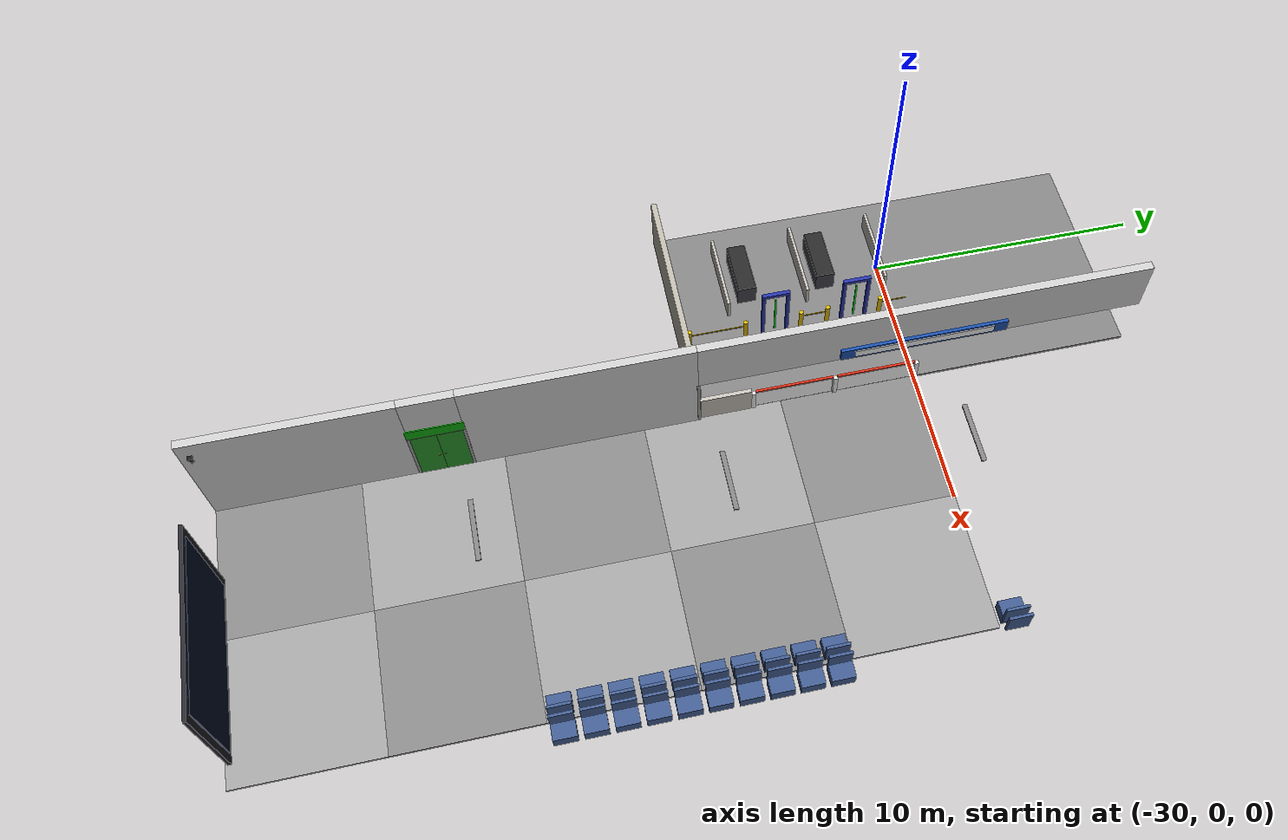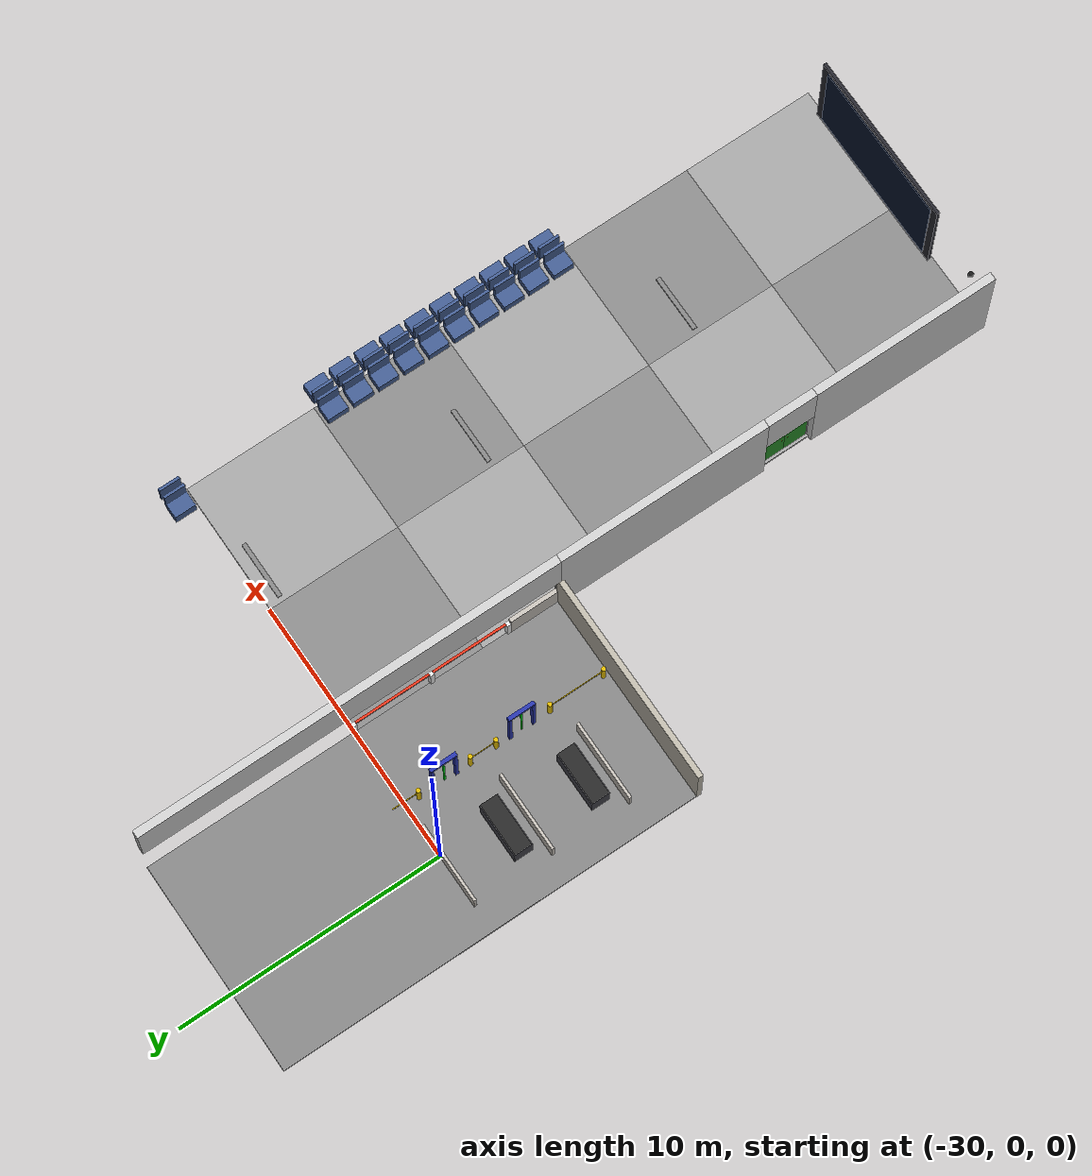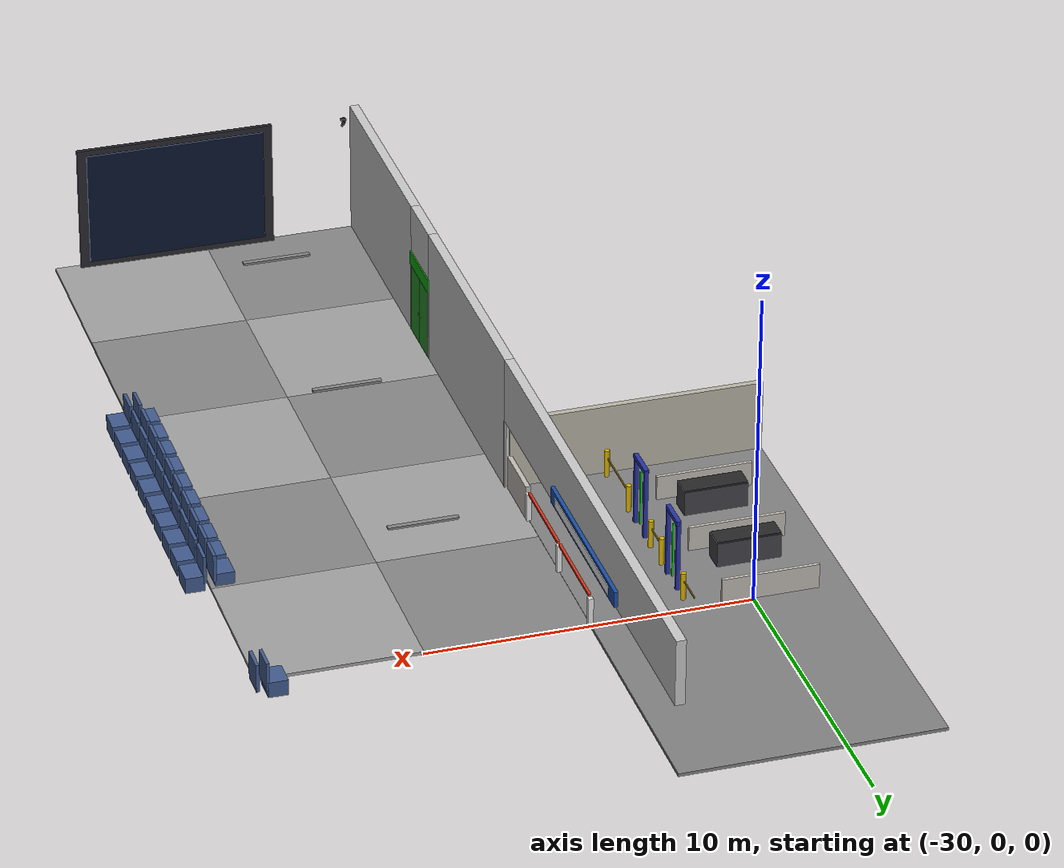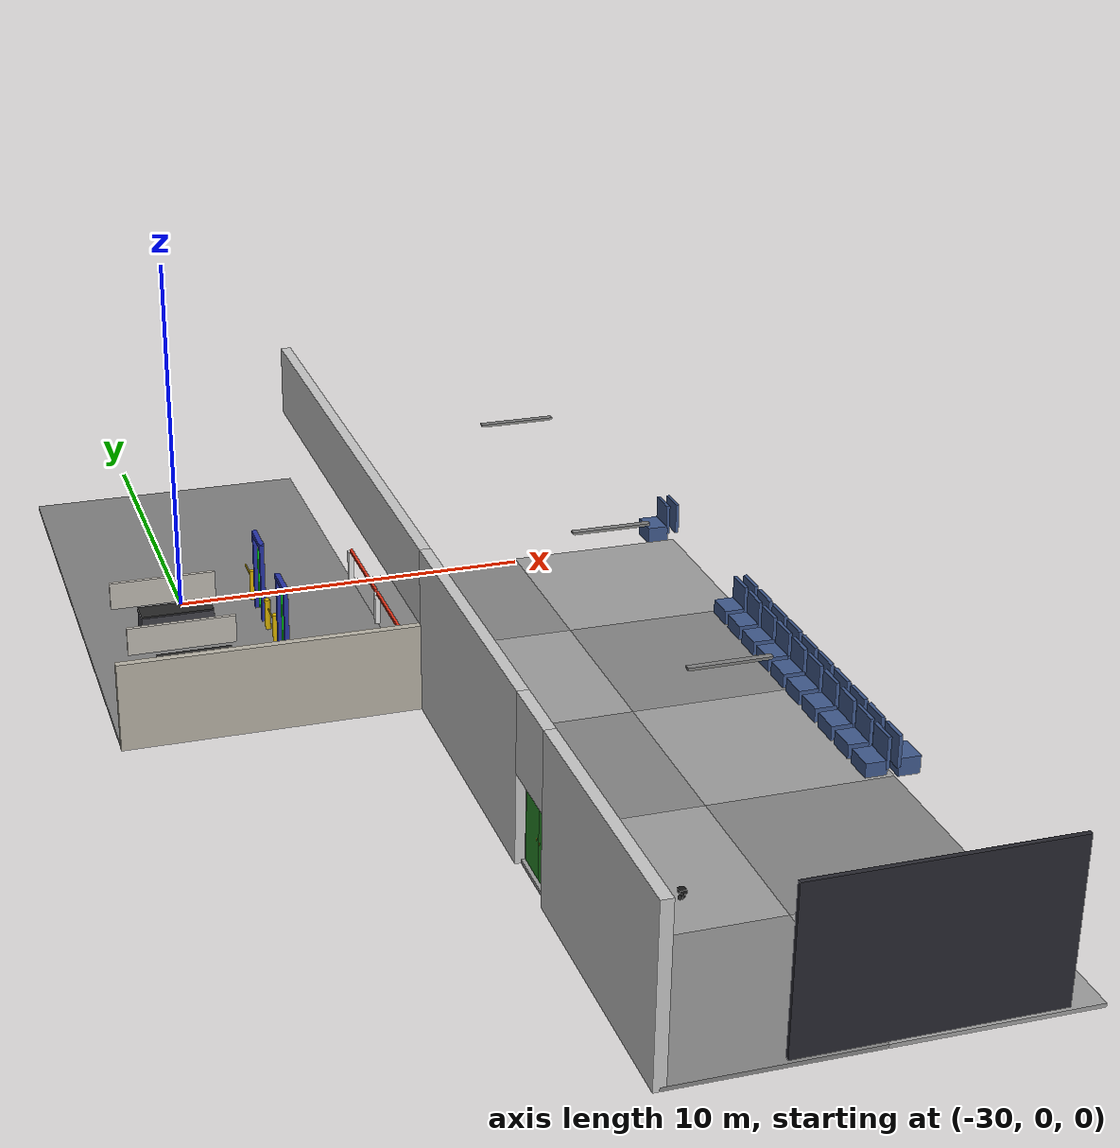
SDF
<sdf version="1.10">
 <world name="my_world">
  <model name="vtile_0_0">
   <static>true</static>
   <pose>-22.5 -22.5 0.05 0 0 0</pose>
   <link name="link">
    <visual name="vis">
     <geometry><box><size>5 5 0.1</size></box></geometry>
     <material><ambient>0.52 0.52 0.52 1</ambient><diffuse>0.52 0.52 0.52 1</diffuse></material>
    </visual>
   </link>
  </model>
  <model name="vtile_0_1">
   <static>true</static>
   <pose>-22.5 -17.5 0.05 0 0 0</pose>
   <link name="link">
    <visual name="vis">
     <geometry><box><size>5 5 0.1</size></box></geometry>
     <material><ambient>0.62 0.62 0.62 1</ambient><diffuse>0.62 0.62 0.62 1</diffuse></material>
    </visual>
   </link>
  </model>
  <model name="vtile_0_2">
   <static>true</static>
   <pose>-22.5 -12.5 0.05 0 0 0</pose>
   <link name="link">
    <visual name="vis">
     <geometry><box><size>5 5 0.1</size></box></geometry>
     <material><ambient>0.52 0.52 0.52 1</ambient><diffuse>0.52 0.52 0.52 1</diffuse></material>
    </visual>
   </link>
  </model>
  <model name="vtile_0_3">
   <static>true</static>
   <pose>-22.5 -7.5 0.05 0 0 0</pose>
   <link name="link">
    <visual name="vis">
     <geometry><box><size>5 5 0.1</size></box></geometry>
     <material><ambient>0.62 0.62 0.62 1</ambient><diffuse>0.62 0.62 0.62 1</diffuse></material>
    </visual>
   </link>
  </model>
  <model name="vtile_0_4">
   <static>true</static>
   <pose>-22.5 -2.5 0.05 0 0 0</pose>
   <link name="link">
    <visual name="vis">
     <geometry><box><size>5 5 0.1</size></box></geometry>
     <material><ambient>0.52 0.52 0.52 1</ambient><diffuse>0.52 0.52 0.52 1</diffuse></material>
    </visual>
   </link>
  </model>
  <model name="vtile_1_0">
   <static>true</static>
   <pose>-17.5 -22.5 0.05 0 0 0</pose>
   <link name="link">
    <visual name="vis">
     <geometry><box><size>5 5 0.1</size></box></geometry>
     <material><ambient>0.62 0.62 0.62 1</ambient><diffuse>0.62 0.62 0.62 1</diffuse></material>
    </visual>
   </link>
  </model>
  <model name="vtile_1_1">
   <static>true</static>
   <pose>-17.5 -17.5 0.05 0 0 0</pose>
   <link name="link">
    <visual name="vis">
     <geometry><box><size>5 5 0.1</size></box></geometry>
     <material><ambient>0.52 0.52 0.52 1</ambient><diffuse>0.52 0.52 0.52 1</diffuse></material>
    </visual>
   </link>
  </model>
  <model name="vtile_1_2">
   <static>true</static>
   <pose>-17.5 -12.5 0.05 0 0 0</pose>
   <link name="link">
    <visual name="vis">
     <geometry><box><size>5 5 0.1</size></box></geometry>
     <material><ambient>0.62 0.62 0.62 1</ambient><diffuse>0.62 0.62 0.62 1</diffuse></material>
    </visual>
   </link>
  </model>
  <model name="vtile_1_3">
   <static>true</static>
   <pose>-17.5 -7.5 0.05 0 0 0</pose>
   <link name="link">
    <visual name="vis">
     <geometry><box><size>5 5 0.1</size></box></geometry>
     <material><ambient>0.52 0.52 0.52 1</ambient><diffuse>0.52 0.52 0.52 1</diffuse></material>
    </visual>
   </link>
  </model>
  <model name="vtile_1_4">
   <static>true</static>
   <pose>-17.5 -2.5 0.05 0 0 0</pose>
   <link name="link">
    <visual name="vis">
     <geometry><box><size>5 5 0.1</size></box></geometry>
     <material><ambient>0.62 0.62 0.62 1</ambient><diffuse>0.62 0.62 0.62 1</diffuse></material>
    </visual>
   </link>
  </model>
  <model name="wall_west_s">
   <static>true</static>
   <pose>-25 -21.475 2.25 0 0 0</pose>
   <link name="link">
    <collision name="col"><geometry><box><size>0.3 7.05 4.5</size></box></geometry></collision>
    <visual name="vis">
     <geometry><box><size>0.3 7.05 4.5</size></box></geometry>
     <material><ambient>0.78 0.78 0.78 1</ambient><diffuse>0.78 0.78 0.78 1</diffuse></material>
    </visual>
   </link>
  </model>
  <model name="wall_west_s2">
   <static>true</static>
   <pose>-25 -12.025 2.25 0 0 0</pose>
   <link name="link">
    <collision name="col"><geometry><box><size>0.3 8.05 4.5</size></box></geometry></collision>
    <visual name="vis">
     <geometry><box><size>0.3 8.05 4.5</size></box></geometry>
     <material><ambient>0.78 0.78 0.78 1</ambient><diffuse>0.78 0.78 0.78 1</diffuse></material>
    </visual>
   </link>
  </model>
  <model name="wall_west_exit_top">
   <static>true</static>
   <pose>-25 -17 3.45 0 0 0</pose>
   <link name="link">
    <collision name="col"><geometry><box><size>0.3 1.9 2.1</size></box></geometry></collision>
    <visual name="vis">
     <geometry><box><size>0.3 1.9 2.1</size></box></geometry>
     <material><ambient>0.78 0.78 0.78 1</ambient><diffuse>0.78 0.78 0.78 1</diffuse></material>
    </visual>
   </link>
  </model>
  <model name="wall_west_top">
   <static>true</static>
   <pose>-25 0 3.45 0 0 0</pose>
   <link name="link">
    <collision name="col"><geometry><box><size>0.3 16 2.1</size></box></geometry></collision>
    <visual name="vis">
     <geometry><box><size>0.3 16 2.1</size></box></geometry>
     <material><ambient>0.78 0.78 0.78 1</ambient><diffuse>0.78 0.78 0.78 1</diffuse></material>
    </visual>
   </link>
  </model>
  <model name="exit_west_door_l">
   <static>true</static>
   <pose>-24.87 -17.45 1.2 0 0 0</pose>
   <link name="link">
    <collision name="col"><geometry><box><size>0.06 0.9 2.4</size></box></geometry></collision>
    <visual name="vis">
     <geometry><box><size>0.06 0.9 2.4</size></box></geometry>
     <material><ambient>0.15 0.55 0.15 1</ambient><diffuse>0.15 0.55 0.15 1</diffuse></material>
    </visual>
   </link>
  </model>
  <model name="exit_west_door_r">
   <static>true</static>
   <pose>-24.87 -16.55 1.2 0 0 0</pose>
   <link name="link">
    <collision name="col"><geometry><box><size>0.06 0.9 2.4</size></box></geometry></collision>
    <visual name="vis">
     <geometry><box><size>0.06 0.9 2.4</size></box></geometry>
     <material><ambient>0.15 0.55 0.15 1</ambient><diffuse>0.15 0.55 0.15 1</diffuse></material>
    </visual>
   </link>
  </model>
  <model name="exit_west_handle_l">
   <static>true</static>
   <pose>-24.87 -17.1 1.1 0 0 0</pose>
   <link name="link">
    <visual name="vis">
     <geometry><box><size>0.08 0.06 0.06</size></box></geometry>
     <material><ambient>0.7 0.6 0.1 1</ambient><diffuse>0.7 0.6 0.1 1</diffuse></material>
    </visual>
   </link>
  </model>
  <model name="exit_west_handle_r">
   <static>true</static>
   <pose>-24.87 -16.9 1.1 0 0 0</pose>
   <link name="link">
    <visual name="vis">
     <geometry><box><size>0.08 0.06 0.06</size></box></geometry>
     <material><ambient>0.7 0.6 0.1 1</ambient><diffuse>0.7 0.6 0.1 1</diffuse></material>
    </visual>
   </link>
  </model>
  <model name="exit_west_sign">
   <static>true</static>
   <pose>-24.87 -17 2.7 0 0 0</pose>
   <link name="link">
    <visual name="vis">
     <geometry><box><size>0.12 2.0 0.45</size></box></geometry>
     <material><ambient>0.05 0.65 0.05 1</ambient><diffuse>0.05 0.65 0.05 1</diffuse></material>
    </visual>
   </link>
  </model>
  <model name="exit_west_sign_txt">
   <static>true</static>
   <pose>-24.87 -17 2.7 0 0 0</pose>
   <link name="link">
    <visual name="vis">
     <geometry><box><size>0.05 1.8 0.28</size></box></geometry>
     <material><ambient>0.92 0.92 0.92 1</ambient><diffuse>0.92 0.92 0.92 1</diffuse></material>
    </visual>
   </link>
  </model>
  <model name="exit_west_frame_l">
   <static>true</static>
   <pose>-24.87 -17.95 1.2 0 0 0</pose>
   <link name="link">
    <collision name="col"><geometry><box><size>0.06 0.1 2.4</size></box></geometry></collision>
    <visual name="vis">
     <geometry><box><size>0.06 0.1 2.4</size></box></geometry>
     <material><ambient>0.6 0.6 0.6 1</ambient><diffuse>0.6 0.6 0.6 1</diffuse></material>
    </visual>
   </link>
  </model>
  <model name="exit_west_frame_r">
   <static>true</static>
   <pose>-24.87 -16.05 1.2 0 0 0</pose>
   <link name="link">
    <collision name="col"><geometry><box><size>0.06 0.1 2.4</size></box></geometry></collision>
    <visual name="vis">
     <geometry><box><size>0.06 0.1 2.4</size></box></geometry>
     <material><ambient>0.6 0.6 0.6 1</ambient><diffuse>0.6 0.6 0.6 1</diffuse></material>
    </visual>
   </link>
  </model>
  <model name="exit_west_frame_t">
   <static>true</static>
   <pose>-24.87 -17 2.45 0 0 0</pose>
   <link name="link">
    <visual name="vis">
     <geometry><box><size>0.06 2.0 0.1</size></box></geometry>
     <material><ambient>0.6 0.6 0.6 1</ambient><diffuse>0.6 0.6 0.6 1</diffuse></material>
    </visual>
   </link>
  </model>
  <model name="entrance_frame_s">
   <static>true</static>
   <pose>-24.87 -8 1.2 0 0 0</pose>
   <link name="link">
    <collision name="col"><geometry><box><size>0.06 0.1 2.4</size></box></geometry></collision>
    <visual name="vis">
     <geometry><box><size>0.06 0.1 2.4</size></box></geometry>
     <material><ambient>0.6 0.6 0.6 1</ambient><diffuse>0.6 0.6 0.6 1</diffuse></material>
    </visual>
   </link>
  </model>
  <model name="entrance_sign">
   <static>true</static>
   <pose>-24.78 0 2.8 0 0 0</pose>
   <link name="link">
    <visual name="vis">
     <geometry><box><size>0.12 6.0 0.5</size></box></geometry>
     <material><ambient>0.1 0.3 0.65 1</ambient><diffuse>0.1 0.3 0.65 1</diffuse></material>
    </visual>
   </link>
  </model>
  <model name="entrance_sign_text">
   <static>true</static>
   <pose>-24.72 0 2.8 0 0 0</pose>
   <link name="link">
    <visual name="vis">
     <geometry><box><size>0.05 5.0 0.3</size></box></geometry>
     <material><ambient>0.92 0.92 0.92 1</ambient><diffuse>0.92 0.92 0.92 1</diffuse></material>
    </visual>
   </link>
  </model>
  <model name="fid_1_frame">
   <static>true</static>
   <pose>-19 -24.85 2.2 0 0 0</pose>
   <link name="link">
    <collision name="col"><geometry><box><size>6.4 0.12 4.2</size></box></geometry></collision>
    <visual name="vis">
     <geometry><box><size>6.4 0.12 4.2</size></box></geometry>
     <material><ambient>0.15 0.15 0.18 1</ambient><diffuse>0.15 0.15 0.18 1</diffuse></material>
    </visual>
   </link>
  </model>
  <model name="fid_1_screen">
   <static>true</static>
   <pose>-19 -24.78 2.2 0 0 0</pose>
   <link name="link">
    <visual name="vis">
     <geometry><box><size>5.8 0.04 3.8</size></box></geometry>
     <material>
      <ambient>0.03 0.08 0.18 1</ambient>
      <diffuse>0.03 0.08 0.18 1</diffuse>
      <emissive>0.04 0.12 0.30 1</emissive>
     </material>
    </visual>
   </link>
  </model>
  <model name="lamp_a_n20_strip">
   <static>true</static>
   <pose>-20 -8 4.42 0 0 0</pose>
   <link name="link">
    <visual name="strip">
     <geometry><box><size>2.0 0.12 0.04</size></box></geometry>
     <material>
      <ambient>0.95 0.95 0.88 1</ambient>
      <diffuse>0.95 0.95 0.88 1</diffuse>
      <emissive>0.35 0.35 0.30 1</emissive>
     </material>
    </visual>
    <visual name="housing">
     <pose>0 0 0.03 0 0 0</pose>
     <geometry><box><size>2.1 0.16 0.06</size></box></geometry>
     <material><ambient>0.5 0.5 0.5 1</ambient><diffuse>0.5 0.5 0.5 1</diffuse></material>
    </visual>
   </link>
  </model>
  <model name="lamp_b_n20_strip">
   <static>true</static>
   <pose>-20 0 4.42 0 0 0</pose>
   <link name="link">
    <visual name="strip">
     <geometry><box><size>2.0 0.12 0.04</size></box></geometry>
     <material>
      <ambient>0.95 0.95 0.88 1</ambient>
      <diffuse>0.95 0.95 0.88 1</diffuse>
      <emissive>0.35 0.35 0.30 1</emissive>
     </material>
    </visual>
    <visual name="housing">
     <pose>0 0 0.03 0 0 0</pose>
     <geometry><box><size>2.1 0.16 0.06</size></box></geometry>
     <material><ambient>0.5 0.5 0.5 1</ambient><diffuse>0.5 0.5 0.5 1</diffuse></material>
    </visual>
   </link>
  </model>
  <model name="lamp_d_n20_strip">
   <static>true</static>
   <pose>-20 -16 4.42 0 0 0</pose>
   <link name="link">
    <visual name="strip">
     <geometry><box><size>2.0 0.12 0.04</size></box></geometry>
     <material>
      <ambient>0.95 0.95 0.88 1</ambient>
      <diffuse>0.95 0.95 0.88 1</diffuse>
      <emissive>0.35 0.35 0.30 1</emissive>
     </material>
    </visual>
    <visual name="housing">
     <pose>0 0 0.03 0 0 0</pose>
     <geometry><box><size>2.1 0.16 0.06</size></box></geometry>
     <material><ambient>0.5 0.5 0.5 1</ambient><diffuse>0.5 0.5 0.5 1</diffuse></material>
    </visual>
   </link>
  </model>
  <model name="camera_sw_mount">
   <static>true</static>
   <pose>-24.5 -24.5 4.3 0 0 0</pose>
   <link name="link">
    <visual name="vis">
     <geometry><box><size>0.15 0.15 0.08</size></box></geometry>
     <material><ambient>0.1 0.1 0.1 1</ambient><diffuse>0.1 0.1 0.1 1</diffuse></material>
    </visual>
   </link>
  </model>
  <model name="camera_sw_body">
   <static>true</static>
   <pose>-24.5 -24.5 4.15 0 1.9199 0.7854</pose>
   <link name="link">
    <visual name="vis">
     <geometry><cylinder><radius>0.05</radius><length>0.16</length></cylinder></geometry>
     <material><ambient>0.12 0.12 0.12 1</ambient><diffuse>0.12 0.12 0.12 1</diffuse></material>
    </visual>
    <sensor name="camera_sw" type="camera">
     <pose>0 0 0 0 -1.5708 0</pose>
     <topic>/surveillance/sw</topic>
     <update_rate>10</update_rate>
     <camera>
      <horizontal_fov>1.9199</horizontal_fov>
      <image><width>1280</width><height>720</height></image>
      <clip><near>0.1</near><far>70.0</far></clip>
     </camera>
     <always_on>true</always_on>
     <visualize>false</visualize>
    </sensor>
   </link>
  </model>
  <model name="cluster_0_a_0">
   <static>true</static>
   <pose>-15.45 -14.50 0.25 0 0 0</pose>
   <link name="link">
    <collision name="col"><geometry><box><size>0.6 0.8 0.5</size></box></geometry></collision>
    <visual name="vis">
     <geometry><box><size>0.6 0.8 0.5</size></box></geometry>
     <material><ambient>0.25 0.35 0.55 1</ambient><diffuse>0.25 0.35 0.55 1</diffuse></material>
    </visual>
   </link>
  </model>
  <model name="cluster_0_a_0_back">
   <static>true</static>
   <pose>-15.15 -14.50 0.7 0 0 0</pose>
   <link name="link">
    <collision name="col"><geometry><box><size>0.1 0.8 0.9</size></box></geometry></collision>
    <visual name="vis">
     <geometry><box><size>0.1 0.8 0.9</size></box></geometry>
     <material><ambient>0.25 0.35 0.55 1</ambient><diffuse>0.25 0.35 0.55 1</diffuse></material>
    </visual>
   </link>
  </model>
  <model name="cluster_0_b_0">
   <static>true</static>
   <pose>-14.55 -14.50 0.25 0 0 0</pose>
   <link name="link">
    <collision name="col"><geometry><box><size>0.6 0.8 0.5</size></box></geometry></collision>
    <visual name="vis">
     <geometry><box><size>0.6 0.8 0.5</size></box></geometry>
     <material><ambient>0.25 0.35 0.55 1</ambient><diffuse>0.25 0.35 0.55 1</diffuse></material>
    </visual>
   </link>
  </model>
  <model name="cluster_0_b_0_back">
   <static>true</static>
   <pose>-14.85 -14.50 0.7 0 0 0</pose>
   <link name="link">
    <collision name="col"><geometry><box><size>0.1 0.8 0.9</size></box></geometry></collision>
    <visual name="vis">
     <geometry><box><size>0.1 0.8 0.9</size></box></geometry>
     <material><ambient>0.25 0.35 0.55 1</ambient><diffuse>0.25 0.35 0.55 1</diffuse></material>
    </visual>
   </link>
  </model>
  <model name="cluster_0_a_1">
   <static>true</static>
   <pose>-15.45 -13.50 0.25 0 0 0</pose>
   <link name="link">
    <collision name="col"><geometry><box><size>0.6 0.8 0.5</size></box></geometry></collision>
    <visual name="vis">
     <geometry><box><size>0.6 0.8 0.5</size></box></geometry>
     <material><ambient>0.25 0.35 0.55 1</ambient><diffuse>0.25 0.35 0.55 1</diffuse></material>
    </visual>
   </link>
  </model>
  <model name="cluster_0_a_1_back">
   <static>true</static>
   <pose>-15.15 -13.50 0.7 0 0 0</pose>
   <link name="link">
    <collision name="col"><geometry><box><size>0.1 0.8 0.9</size></box></geometry></collision>
    <visual name="vis">
     <geometry><box><size>0.1 0.8 0.9</size></box></geometry>
     <material><ambient>0.25 0.35 0.55 1</ambient><diffuse>0.25 0.35 0.55 1</diffuse></material>
    </visual>
   </link>
  </model>
  <model name="cluster_0_b_1">
   <static>true</static>
   <pose>-14.55 -13.50 0.25 0 0 0</pose>
   <link name="link">
    <collision name="col"><geometry><box><size>0.6 0.8 0.5</size></box></geometry></collision>
    <visual name="vis">
     <geometry><box><size>0.6 0.8 0.5</size></box></geometry>
     <material><ambient>0.25 0.35 0.55 1</ambient><diffuse>0.25 0.35 0.55 1</diffuse></material>
    </visual>
   </link>
  </model>
  <model name="cluster_0_b_1_back">
   <static>true</static>
   <pose>-14.85 -13.50 0.7 0 0 0</pose>
   <link name="link">
    <collision name="col"><geometry><box><size>0.1 0.8 0.9</size></box></geometry></collision>
    <visual name="vis">
     <geometry><box><size>0.1 0.8 0.9</size></box></geometry>
     <material><ambient>0.25 0.35 0.55 1</ambient><diffuse>0.25 0.35 0.55 1</diffuse></material>
    </visual>
   </link>
  </model>
  <model name="cluster_0_a_2">
   <static>true</static>
   <pose>-15.45 -12.50 0.25 0 0 0</pose>
   <link name="link">
    <collision name="col"><geometry><box><size>0.6 0.8 0.5</size></box></geometry></collision>
    <visual name="vis">
     <geometry><box><size>0.6 0.8 0.5</size></box></geometry>
     <material><ambient>0.25 0.35 0.55 1</ambient><diffuse>0.25 0.35 0.55 1</diffuse></material>
    </visual>
   </link>
  </model>
  <model name="cluster_0_a_2_back">
   <static>true</static>
   <pose>-15.15 -12.50 0.7 0 0 0</pose>
   <link name="link">
    <collision name="col"><geometry><box><size>0.1 0.8 0.9</size></box></geometry></collision>
    <visual name="vis">
     <geometry><box><size>0.1 0.8 0.9</size></box></geometry>
     <material><ambient>0.25 0.35 0.55 1</ambient><diffuse>0.25 0.35 0.55 1</diffuse></material>
    </visual>
   </link>
  </model>
  <model name="cluster_0_b_2">
   <static>true</static>
   <pose>-14.55 -12.50 0.25 0 0 0</pose>
   <link name="link">
    <collision name="col"><geometry><box><size>0.6 0.8 0.5</size></box></geometry></collision>
    <visual name="vis">
     <geometry><box><size>0.6 0.8 0.5</size></box></geometry>
     <material><ambient>0.25 0.35 0.55 1</ambient><diffuse>0.25 0.35 0.55 1</diffuse></material>
    </visual>
   </link>
  </model>
  <model name="cluster_0_b_2_back">
   <static>true</static>
   <pose>-14.85 -12.50 0.7 0 0 0</pose>
   <link name="link">
    <collision name="col"><geometry><box><size>0.1 0.8 0.9</size></box></geometry></collision>
    <visual name="vis">
     <geometry><box><size>0.1 0.8 0.9</size></box></geometry>
     <material><ambient>0.25 0.35 0.55 1</ambient><diffuse>0.25 0.35 0.55 1</diffuse></material>
    </visual>
   </link>
  </model>
  <model name="cluster_0_a_3">
   <static>true</static>
   <pose>-15.45 -11.50 0.25 0 0 0</pose>
   <link name="link">
    <collision name="col"><geometry><box><size>0.6 0.8 0.5</size></box></geometry></collision>
    <visual name="vis">
     <geometry><box><size>0.6 0.8 0.5</size></box></geometry>
     <material><ambient>0.25 0.35 0.55 1</ambient><diffuse>0.25 0.35 0.55 1</diffuse></material>
    </visual>
   </link>
  </model>
  <model name="cluster_0_a_3_back">
   <static>true</static>
   <pose>-15.15 -11.50 0.7 0 0 0</pose>
   <link name="link">
    <collision name="col"><geometry><box><size>0.1 0.8 0.9</size></box></geometry></collision>
    <visual name="vis">
     <geometry><box><size>0.1 0.8 0.9</size></box></geometry>
     <material><ambient>0.25 0.35 0.55 1</ambient><diffuse>0.25 0.35 0.55 1</diffuse></material>
    </visual>
   </link>
  </model>
  <model name="cluster_0_b_3">
   <static>true</static>
   <pose>-14.55 -11.50 0.25 0 0 0</pose>
   <link name="link">
    <collision name="col"><geometry><box><size>0.6 0.8 0.5</size></box></geometry></collision>
    <visual name="vis">
     <geometry><box><size>0.6 0.8 0.5</size></box></geometry>
     <material><ambient>0.25 0.35 0.55 1</ambient><diffuse>0.25 0.35 0.55 1</diffuse></material>
    </visual>
   </link>
  </model>
  <model name="cluster_0_b_3_back">
   <static>true</static>
   <pose>-14.85 -11.50 0.7 0 0 0</pose>
   <link name="link">
    <collision name="col"><geometry><box><size>0.1 0.8 0.9</size></box></geometry></collision>
    <visual name="vis">
     <geometry><box><size>0.1 0.8 0.9</size></box></geometry>
     <material><ambient>0.25 0.35 0.55 1</ambient><diffuse>0.25 0.35 0.55 1</diffuse></material>
    </visual>
   </link>
  </model>
  <model name="cluster_0_a_4">
   <static>true</static>
   <pose>-15.45 -10.50 0.25 0 0 0</pose>
   <link name="link">
    <collision name="col"><geometry><box><size>0.6 0.8 0.5</size></box></geometry></collision>
    <visual name="vis">
     <geometry><box><size>0.6 0.8 0.5</size></box></geometry>
     <material><ambient>0.25 0.35 0.55 1</ambient><diffuse>0.25 0.35 0.55 1</diffuse></material>
    </visual>
   </link>
  </model>
  <model name="cluster_0_a_4_back">
   <static>true</static>
   <pose>-15.15 -10.50 0.7 0 0 0</pose>
   <link name="link">
    <collision name="col"><geometry><box><size>0.1 0.8 0.9</size></box></geometry></collision>
    <visual name="vis">
     <geometry><box><size>0.1 0.8 0.9</size></box></geometry>
     <material><ambient>0.25 0.35 0.55 1</ambient><diffuse>0.25 0.35 0.55 1</diffuse></material>
    </visual>
   </link>
  </model>
  <model name="cluster_0_b_4">
   <static>true</static>
   <pose>-14.55 -10.50 0.25 0 0 0</pose>
   <link name="link">
    <collision name="col"><geometry><box><size>0.6 0.8 0.5</size></box></geometry></collision>
    <visual name="vis">
     <geometry><box><size>0.6 0.8 0.5</size></box></geometry>
     <material><ambient>0.25 0.35 0.55 1</ambient><diffuse>0.25 0.35 0.55 1</diffuse></material>
    </visual>
   </link>
  </model>
  <model name="cluster_0_b_4_back">
   <static>true</static>
   <pose>-14.85 -10.50 0.7 0 0 0</pose>
   <link name="link">
    <collision name="col"><geometry><box><size>0.1 0.8 0.9</size></box></geometry></collision>
    <visual name="vis">
     <geometry><box><size>0.1 0.8 0.9</size></box></geometry>
     <material><ambient>0.25 0.35 0.55 1</ambient><diffuse>0.25 0.35 0.55 1</diffuse></material>
    </visual>
   </link>
  </model>
  <model name="cluster_0_a_5">
   <static>true</static>
   <pose>-15.45 -9.50 0.25 0 0 0</pose>
   <link name="link">
    <collision name="col"><geometry><box><size>0.6 0.8 0.5</size></box></geometry></collision>
    <visual name="vis">
     <geometry><box><size>0.6 0.8 0.5</size></box></geometry>
     <material><ambient>0.25 0.35 0.55 1</ambient><diffuse>0.25 0.35 0.55 1</diffuse></material>
    </visual>
   </link>
  </model>
  <model name="cluster_0_a_5_back">
   <static>true</static>
   <pose>-15.15 -9.50 0.7 0 0 0</pose>
   <link name="link">
    <collision name="col"><geometry><box><size>0.1 0.8 0.9</size></box></geometry></collision>
    <visual name="vis">
     <geometry><box><size>0.1 0.8 0.9</size></box></geometry>
     <material><ambient>0.25 0.35 0.55 1</ambient><diffuse>0.25 0.35 0.55 1</diffuse></material>
    </visual>
   </link>
  </model>
  <model name="cluster_0_b_5">
   <static>true</static>
   <pose>-14.55 -9.50 0.25 0 0 0</pose>
   <link name="link">
    <collision name="col"><geometry><box><size>0.6 0.8 0.5</size></box></geometry></collision>
    <visual name="vis">
     <geometry><box><size>0.6 0.8 0.5</size></box></geometry>
     <material><ambient>0.25 0.35 0.55 1</ambient><diffuse>0.25 0.35 0.55 1</diffuse></material>
    </visual>
   </link>
  </model>
  <model name="cluster_0_b_5_back">
   <static>true</static>
   <pose>-14.85 -9.50 0.7 0 0 0</pose>
   <link name="link">
    <collision name="col"><geometry><box><size>0.1 0.8 0.9</size></box></geometry></collision>
    <visual name="vis">
     <geometry><box><size>0.1 0.8 0.9</size></box></geometry>
     <material><ambient>0.25 0.35 0.55 1</ambient><diffuse>0.25 0.35 0.55 1</diffuse></material>
    </visual>
   </link>
  </model>
  <model name="cluster_0_a_6">
   <static>true</static>
   <pose>-15.45 -8.50 0.25 0 0 0</pose>
   <link name="link">
    <collision name="col"><geometry><box><size>0.6 0.8 0.5</size></box></geometry></collision>
    <visual name="vis">
     <geometry><box><size>0.6 0.8 0.5</size></box></geometry>
     <material><ambient>0.25 0.35 0.55 1</ambient><diffuse>0.25 0.35 0.55 1</diffuse></material>
    </visual>
   </link>
  </model>
  <model name="cluster_0_a_6_back">
   <static>true</static>
   <pose>-15.15 -8.50 0.7 0 0 0</pose>
   <link name="link">
    <collision name="col"><geometry><box><size>0.1 0.8 0.9</size></box></geometry></collision>
    <visual name="vis">
     <geometry><box><size>0.1 0.8 0.9</size></box></geometry>
     <material><ambient>0.25 0.35 0.55 1</ambient><diffuse>0.25 0.35 0.55 1</diffuse></material>
    </visual>
   </link>
  </model>
  <model name="cluster_0_b_6">
   <static>true</static>
   <pose>-14.55 -8.50 0.25 0 0 0</pose>
   <link name="link">
    <collision name="col"><geometry><box><size>0.6 0.8 0.5</size></box></geometry></collision>
    <visual name="vis">
     <geometry><box><size>0.6 0.8 0.5</size></box></geometry>
     <material><ambient>0.25 0.35 0.55 1</ambient><diffuse>0.25 0.35 0.55 1</diffuse></material>
    </visual>
   </link>
  </model>
  <model name="cluster_0_b_6_back">
   <static>true</static>
   <pose>-14.85 -8.50 0.7 0 0 0</pose>
   <link name="link">
    <collision name="col"><geometry><box><size>0.1 0.8 0.9</size></box></geometry></collision>
    <visual name="vis">
     <geometry><box><size>0.1 0.8 0.9</size></box></geometry>
     <material><ambient>0.25 0.35 0.55 1</ambient><diffuse>0.25 0.35 0.55 1</diffuse></material>
    </visual>
   </link>
  </model>
  <model name="cluster_0_a_7">
   <static>true</static>
   <pose>-15.45 -7.50 0.25 0 0 0</pose>
   <link name="link">
    <collision name="col"><geometry><box><size>0.6 0.8 0.5</size></box></geometry></collision>
    <visual name="vis">
     <geometry><box><size>0.6 0.8 0.5</size></box></geometry>
     <material><ambient>0.25 0.35 0.55 1</ambient><diffuse>0.25 0.35 0.55 1</diffuse></material>
    </visual>
   </link>
  </model>
  <model name="cluster_0_a_7_back">
   <static>true</static>
   <pose>-15.15 -7.50 0.7 0 0 0</pose>
   <link name="link">
    <collision name="col"><geometry><box><size>0.1 0.8 0.9</size></box></geometry></collision>
    <visual name="vis">
     <geometry><box><size>0.1 0.8 0.9</size></box></geometry>
     <material><ambient>0.25 0.35 0.55 1</ambient><diffuse>0.25 0.35 0.55 1</diffuse></material>
    </visual>
   </link>
  </model>
  <model name="cluster_0_b_7">
   <static>true</static>
   <pose>-14.55 -7.50 0.25 0 0 0</pose>
   <link name="link">
    <collision name="col"><geometry><box><size>0.6 0.8 0.5</size></box></geometry></collision>
    <visual name="vis">
     <geometry><box><size>0.6 0.8 0.5</size></box></geometry>
     <material><ambient>0.25 0.35 0.55 1</ambient><diffuse>0.25 0.35 0.55 1</diffuse></material>
    </visual>
   </link>
  </model>
  <model name="cluster_0_b_7_back">
   <static>true</static>
   <pose>-14.85 -7.50 0.7 0 0 0</pose>
   <link name="link">
    <collision name="col"><geometry><box><size>0.1 0.8 0.9</size></box></geometry></collision>
    <visual name="vis">
     <geometry><box><size>0.1 0.8 0.9</size></box></geometry>
     <material><ambient>0.25 0.35 0.55 1</ambient><diffuse>0.25 0.35 0.55 1</diffuse></material>
    </visual>
   </link>
  </model>
  <model name="cluster_0_a_8">
   <static>true</static>
   <pose>-15.45 -6.50 0.25 0 0 0</pose>
   <link name="link">
    <collision name="col"><geometry><box><size>0.6 0.8 0.5</size></box></geometry></collision>
    <visual name="vis">
     <geometry><box><size>0.6 0.8 0.5</size></box></geometry>
     <material><ambient>0.25 0.35 0.55 1</ambient><diffuse>0.25 0.35 0.55 1</diffuse></material>
    </visual>
   </link>
  </model>
  <model name="cluster_0_a_8_back">
   <static>true</static>
   <pose>-15.15 -6.50 0.7 0 0 0</pose>
   <link name="link">
    <collision name="col"><geometry><box><size>0.1 0.8 0.9</size></box></geometry></collision>
    <visual name="vis">
     <geometry><box><size>0.1 0.8 0.9</size></box></geometry>
     <material><ambient>0.25 0.35 0.55 1</ambient><diffuse>0.25 0.35 0.55 1</diffuse></material>
    </visual>
   </link>
  </model>
  <model name="cluster_0_b_8">
   <static>true</static>
   <pose>-14.55 -6.50 0.25 0 0 0</pose>
   <link name="link">
    <collision name="col"><geometry><box><size>0.6 0.8 0.5</size></box></geometry></collision>
    <visual name="vis">
     <geometry><box><size>0.6 0.8 0.5</size></box></geometry>
     <material><ambient>0.25 0.35 0.55 1</ambient><diffuse>0.25 0.35 0.55 1</diffuse></material>
    </visual>
   </link>
  </model>
  <model name="cluster_0_b_8_back">
   <static>true</static>
   <pose>-14.85 -6.50 0.7 0 0 0</pose>
   <link name="link">
    <collision name="col"><geometry><box><size>0.1 0.8 0.9</size></box></geometry></collision>
    <visual name="vis">
     <geometry><box><size>0.1 0.8 0.9</size></box></geometry>
     <material><ambient>0.25 0.35 0.55 1</ambient><diffuse>0.25 0.35 0.55 1</diffuse></material>
    </visual>
   </link>
  </model>
  <model name="cluster_0_a_9">
   <static>true</static>
   <pose>-15.45 -5.50 0.25 0 0 0</pose>
   <link name="link">
    <collision name="col"><geometry><box><size>0.6 0.8 0.5</size></box></geometry></collision>
    <visual name="vis">
     <geometry><box><size>0.6 0.8 0.5</size></box></geometry>
     <material><ambient>0.25 0.35 0.55 1</ambient><diffuse>0.25 0.35 0.55 1</diffuse></material>
    </visual>
   </link>
  </model>
  <model name="cluster_0_a_9_back">
   <static>true</static>
   <pose>-15.15 -5.50 0.7 0 0 0</pose>
   <link name="link">
    <collision name="col"><geometry><box><size>0.1 0.8 0.9</size></box></geometry></collision>
    <visual name="vis">
     <geometry><box><size>0.1 0.8 0.9</size></box></geometry>
     <material><ambient>0.25 0.35 0.55 1</ambient><diffuse>0.25 0.35 0.55 1</diffuse></material>
    </visual>
   </link>
  </model>
  <model name="cluster_0_b_9">
   <static>true</static>
   <pose>-14.55 -5.50 0.25 0 0 0</pose>
   <link name="link">
    <collision name="col"><geometry><box><size>0.6 0.8 0.5</size></box></geometry></collision>
    <visual name="vis">
     <geometry><box><size>0.6 0.8 0.5</size></box></geometry>
     <material><ambient>0.25 0.35 0.55 1</ambient><diffuse>0.25 0.35 0.55 1</diffuse></material>
    </visual>
   </link>
  </model>
  <model name="cluster_0_b_9_back">
   <static>true</static>
   <pose>-14.85 -5.50 0.7 0 0 0</pose>
   <link name="link">
    <collision name="col"><geometry><box><size>0.1 0.8 0.9</size></box></geometry></collision>
    <visual name="vis">
     <geometry><box><size>0.1 0.8 0.9</size></box></geometry>
     <material><ambient>0.25 0.35 0.55 1</ambient><diffuse>0.25 0.35 0.55 1</diffuse></material>
    </visual>
   </link>
  </model>
  <model name="cluster_5_a_0">
   <static>true</static>
   <pose>-15.45 0.50 0.25 0 0 0</pose>
   <link name="link">
    <collision name="col"><geometry><box><size>0.6 0.8 0.5</size></box></geometry></collision>
    <visual name="vis">
     <geometry><box><size>0.6 0.8 0.5</size></box></geometry>
     <material><ambient>0.25 0.35 0.55 1</ambient><diffuse>0.25 0.35 0.55 1</diffuse></material>
    </visual>
   </link>
  </model>
  <model name="cluster_5_a_0_back">
   <static>true</static>
   <pose>-15.15 0.50 0.7 0 0 0</pose>
   <link name="link">
    <collision name="col"><geometry><box><size>0.1 0.8 0.9</size></box></geometry></collision>
    <visual name="vis">
     <geometry><box><size>0.1 0.8 0.9</size></box></geometry>
     <material><ambient>0.25 0.35 0.55 1</ambient><diffuse>0.25 0.35 0.55 1</diffuse></material>
    </visual>
   </link>
  </model>
  <model name="cluster_5_b_0_back">
   <static>true</static>
   <pose>-14.85 0.50 0.7 0 0 0</pose>
   <link name="link">
    <collision name="col"><geometry><box><size>0.1 0.8 0.9</size></box></geometry></collision>
    <visual name="vis">
     <geometry><box><size>0.1 0.8 0.9</size></box></geometry>
     <material><ambient>0.25 0.35 0.55 1</ambient><diffuse>0.25 0.35 0.55 1</diffuse></material>
    </visual>
   </link>
  </model>
  <model name="sec_floor">
   <static>true</static>
   <pose>-29.0 0 0.06 0 0 0</pose>
   <link name="link">
    <collision name="col"><geometry><box><size>8.0 16.0 0.1</size></box></geometry></collision>
    <visual name="vis">
     <geometry><box><size>8.0 16.0 0.1</size></box></geometry>
     <material><ambient>0.50 0.50 0.50 1</ambient><diffuse>0.50 0.50 0.50 1</diffuse></material>
    </visual>
   </link>
  </model>
  <model name="sec_outer_wall_s">
   <static>true</static>
   <pose>-29.0 -8.0 1.2 0 0 0</pose>
   <link name="link">
    <collision name="col"><geometry><box><size>8.0 0.2 2.4</size></box></geometry></collision>
    <visual name="vis">
     <geometry><box><size>8.0 0.2 2.4</size></box></geometry>
     <material><ambient>0.72 0.70 0.65 1</ambient><diffuse>0.72 0.70 0.65 1</diffuse></material>
    </visual>
   </link>
  </model>
  <model name="sec_xray_1_l">
   <static>true</static>
   <pose>-28.0 -4.05 1.2 0 0 0</pose>
   <link name="link">
    <collision name="col"><geometry><box><size>0.12 0.12 2.4</size></box></geometry></collision>
    <visual name="vis">
     <geometry><box><size>0.12 0.12 2.4</size></box></geometry>
     <material><ambient>0.15 0.20 0.65 1</ambient><diffuse>0.15 0.20 0.65 1</diffuse></material>
    </visual>
   </link>
  </model>
  <model name="sec_xray_1_r">
   <static>true</static>
   <pose>-28.0 -4.95 1.2 0 0 0</pose>
   <link name="link">
    <collision name="col"><geometry><box><size>0.12 0.12 2.4</size></box></geometry></collision>
    <visual name="vis">
     <geometry><box><size>0.12 0.12 2.4</size></box></geometry>
     <material><ambient>0.15 0.20 0.65 1</ambient><diffuse>0.15 0.20 0.65 1</diffuse></material>
    </visual>
   </link>
  </model>
  <model name="sec_xray_1_top">
   <static>true</static>
   <pose>-28.0 -4.5 2.38 0 0 0</pose>
   <link name="link">
    <visual name="vis">
     <geometry><box><size>0.14 1.02 0.14</size></box></geometry>
     <material><ambient>0.15 0.20 0.65 1</ambient><diffuse>0.15 0.20 0.65 1</diffuse></material>
    </visual>
   </link>
  </model>
  <model name="sec_xray_1_led">
   <static>true</static>
   <pose>-28.0 -4.5 1.2 0 0 0</pose>
   <link name="link">
    <visual name="vis">
     <geometry><box><size>0.05 0.06 1.8</size></box></geometry>
     <material>
      <ambient>0.0 0.85 0.1 1</ambient>
      <diffuse>0.0 0.85 0.1 1</diffuse>
      <emissive>0.0 0.45 0.05 1</emissive>
     </material>
    </visual>
   </link>
  </model>
  <model name="sec_xray_2_l">
   <static>true</static>
   <pose>-28.0 -1.05 1.2 0 0 0</pose>
   <link name="link">
    <collision name="col"><geometry><box><size>0.12 0.12 2.4</size></box></geometry></collision>
    <visual name="vis">
     <geometry><box><size>0.12 0.12 2.4</size></box></geometry>
     <material><ambient>0.15 0.20 0.65 1</ambient><diffuse>0.15 0.20 0.65 1</diffuse></material>
    </visual>
   </link>
  </model>
  <model name="sec_xray_2_r">
   <static>true</static>
   <pose>-28.0 -1.95 1.2 0 0 0</pose>
   <link name="link">
    <collision name="col"><geometry><box><size>0.12 0.12 2.4</size></box></geometry></collision>
    <visual name="vis">
     <geometry><box><size>0.12 0.12 2.4</size></box></geometry>
     <material><ambient>0.15 0.20 0.65 1</ambient><diffuse>0.15 0.20 0.65 1</diffuse></material>
    </visual>
   </link>
  </model>
  <model name="sec_xray_2_top">
   <static>true</static>
   <pose>-28.0 -1.5 2.38 0 0 0</pose>
   <link name="link">
    <visual name="vis">
     <geometry><box><size>0.14 1.02 0.14</size></box></geometry>
     <material><ambient>0.15 0.20 0.65 1</ambient><diffuse>0.15 0.20 0.65 1</diffuse></material>
    </visual>
   </link>
  </model>
  <model name="sec_xray_2_led">
   <static>true</static>
   <pose>-28.0 -1.5 1.2 0 0 0</pose>
   <link name="link">
    <visual name="vis">
     <geometry><box><size>0.05 0.06 1.8</size></box></geometry>
     <material>
      <ambient>0.0 0.85 0.1 1</ambient>
      <diffuse>0.0 0.85 0.1 1</diffuse>
      <emissive>0.0 0.45 0.05 1</emissive>
     </material>
    </visual>
   </link>
  </model>
  <model name="sec_barrier_1_post_l">
   <static>true</static>
   <pose>-25.0 -6.0 0.5 0 0 0</pose>
   <link name="link">
    <collision name="col"><geometry><box><size>0.15 0.15 1.0</size></box></geometry></collision>
    <visual name="vis">
     <geometry><box><size>0.15 0.15 1.0</size></box></geometry>
     <material><ambient>0.9 0.9 0.9 1</ambient><diffuse>0.9 0.9 0.9 1</diffuse></material>
    </visual>
   </link>
  </model>
  <model name="sec_barrier_1_arm">
   <static>true</static>
   <pose>-25.0 -4.5 1.05 0 0 0</pose>
   <link name="link">
    <collision name="col"><geometry><box><size>0.08 2.85 0.08</size></box></geometry></collision>
    <visual name="vis">
     <geometry><box><size>0.08 2.85 0.08</size></box></geometry>
     <material><ambient>0.9 0.2 0.1 1</ambient><diffuse>0.9 0.2 0.1 1</diffuse></material>
    </visual>
   </link>
  </model>
  <model name="sec_barrier_1_post_r">
   <static>true</static>
   <pose>-25.0 -3.0 0.5 0 0 0</pose>
   <link name="link">
    <collision name="col"><geometry><box><size>0.15 0.15 1.0</size></box></geometry></collision>
    <visual name="vis">
     <geometry><box><size>0.15 0.15 1.0</size></box></geometry>
     <material><ambient>0.9 0.9 0.9 1</ambient><diffuse>0.9 0.9 0.9 1</diffuse></material>
    </visual>
   </link>
  </model>
  <model name="sec_barrier_2_post_l">
   <static>true</static>
   <pose>-25.0 -3.0 0.5 0 0 0</pose>
   <link name="link">
    <collision name="col"><geometry><box><size>0.15 0.15 1.0</size></box></geometry></collision>
    <visual name="vis">
     <geometry><box><size>0.15 0.15 1.0</size></box></geometry>
     <material><ambient>0.9 0.9 0.9 1</ambient><diffuse>0.9 0.9 0.9 1</diffuse></material>
    </visual>
   </link>
  </model>
  <model name="sec_barrier_2_arm">
   <static>true</static>
   <pose>-25.0 -1.5 1.05 0 0 0</pose>
   <link name="link">
    <collision name="col"><geometry><box><size>0.08 2.85 0.08</size></box></geometry></collision>
    <visual name="vis">
     <geometry><box><size>0.08 2.85 0.08</size></box></geometry>
     <material><ambient>0.9 0.2 0.1 1</ambient><diffuse>0.9 0.2 0.1 1</diffuse></material>
    </visual>
   </link>
  </model>
  <model name="sec_barrier_2_post_r">
   <static>true</static>
   <pose>-25.0 0.0 0.5 0 0 0</pose>
   <link name="link">
    <collision name="col"><geometry><box><size>0.15 0.15 1.0</size></box></geometry></collision>
    <visual name="vis">
     <geometry><box><size>0.15 0.15 1.0</size></box></geometry>
     <material><ambient>0.9 0.9 0.9 1</ambient><diffuse>0.9 0.9 0.9 1</diffuse></material>
    </visual>
   </link>
  </model>
  <model name="sec_barrier_3_post_l">
   <static>true</static>
   <pose>-25.0 0.0 0.5 0 0 0</pose>
   <link name="link">
    <collision name="col"><geometry><box><size>0.15 0.15 1.0</size></box></geometry></collision>
    <visual name="vis">
     <geometry><box><size>0.15 0.15 1.0</size></box></geometry>
     <material><ambient>0.9 0.9 0.9 1</ambient><diffuse>0.9 0.9 0.9 1</diffuse></material>
    </visual>
   </link>
  </model>
  <model name="sec_barrier_wall_s">
   <static>true</static>
   <pose>-25.0 -7.0 0.6 0 0 0</pose>
   <link name="link">
    <collision name="col"><geometry><box><size>0.15 1.85 1.2</size></box></geometry></collision>
    <visual name="vis">
     <geometry><box><size>0.15 1.85 1.2</size></box></geometry>
     <material><ambient>0.75 0.73 0.70 1</ambient><diffuse>0.75 0.73 0.70 1</diffuse></material>
    </visual>
   </link>
  </model>
  <model name="sec_poll_ws_a">
   <static>true</static>
   <pose>-28.0 -7.7 0.5 0 0 0</pose>
   <link name="link">
    <collision name="col">
     <geometry><cylinder><radius>0.08</radius><length>1.0</length></cylinder></geometry>
    </collision>
    <visual name="vis">
     <geometry><cylinder><radius>0.08</radius><length>1.0</length></cylinder></geometry>
     <material><ambient>0.85 0.7 0.0 1</ambient><diffuse>0.85 0.7 0.0 1</diffuse></material>
    </visual>
   </link>
  </model>
  <model name="sec_poll_ws_b">
   <static>true</static>
   <pose>-28.0 -5.6 0.5 0 0 0</pose>
   <link name="link">
    <collision name="col">
     <geometry><cylinder><radius>0.08</radius><length>1.0</length></cylinder></geometry>
    </collision>
    <visual name="vis">
     <geometry><cylinder><radius>0.08</radius><length>1.0</length></cylinder></geometry>
     <material><ambient>0.85 0.7 0.0 1</ambient><diffuse>0.85 0.7 0.0 1</diffuse></material>
    </visual>
   </link>
  </model>
  <model name="sec_rope_ws">
   <static>true</static>
   <pose>-28.0 -6.6 0.75 0 0 0</pose>
   <link name="link">
    <visual name="vis">
     <geometry><box><size>0.03 2.1 0.04</size></box></geometry>
     <material><ambient>0.6 0.5 0.0 1</ambient><diffuse>0.6 0.5 0.0 1</diffuse></material>
    </visual>
   </link>
  </model>
  <model name="sec_poll_12_a">
   <static>true</static>
   <pose>-28.0 -3.5 0.5 0 0 0</pose>
   <link name="link">
    <collision name="col">
     <geometry><cylinder><radius>0.08</radius><length>1.0</length></cylinder></geometry>
    </collision>
    <visual name="vis">
     <geometry><cylinder><radius>0.08</radius><length>1.0</length></cylinder></geometry>
     <material><ambient>0.85 0.7 0.0 1</ambient><diffuse>0.85 0.7 0.0 1</diffuse></material>
    </visual>
   </link>
  </model>
  <model name="sec_poll_12_b">
   <static>true</static>
   <pose>-28.0 -2.5 0.5 0 0 0</pose>
   <link name="link">
    <collision name="col">
     <geometry><cylinder><radius>0.08</radius><length>1.0</length></cylinder></geometry>
    </collision>
    <visual name="vis">
     <geometry><cylinder><radius>0.08</radius><length>1.0</length></cylinder></geometry>
     <material><ambient>0.85 0.7 0.0 1</ambient><diffuse>0.85 0.7 0.0 1</diffuse></material>
    </visual>
   </link>
  </model>
  <model name="sec_rope_12">
   <static>true</static>
   <pose>-28.0 -3.0 0.75 0 0 0</pose>
   <link name="link">
    <visual name="vis">
     <geometry><box><size>0.03 1.0 0.04</size></box></geometry>
     <material><ambient>0.6 0.5 0.0 1</ambient><diffuse>0.6 0.5 0.0 1</diffuse></material>
    </visual>
   </link>
  </model>
  <model name="sec_poll_23_a">
   <static>true</static>
   <pose>-28.0 -0.5 0.5 0 0 0</pose>
   <link name="link">
    <collision name="col">
     <geometry><cylinder><radius>0.08</radius><length>1.0</length></cylinder></geometry>
    </collision>
    <visual name="vis">
     <geometry><cylinder><radius>0.08</radius><length>1.0</length></cylinder></geometry>
     <material><ambient>0.85 0.7 0.0 1</ambient><diffuse>0.85 0.7 0.0 1</diffuse></material>
    </visual>
   </link>
  </model>
  <model name="sec_rope_23">
   <static>true</static>
   <pose>-28.0 0.0 0.75 0 0 0</pose>
   <link name="link">
    <visual name="vis">
     <geometry><box><size>0.03 1.0 0.04</size></box></geometry>
     <material><ambient>0.6 0.5 0.0 1</ambient><diffuse>0.6 0.5 0.0 1</diffuse></material>
    </visual>
   </link>
  </model>
  <model name="sec_conv_div_o">
   <static>true</static>
   <pose>-30.5 -6.0 0.45 0 0 0</pose>
   <link name="link">
    <collision name="col"><geometry><box><size>3.0 0.1 0.9</size></box></geometry></collision>
    <visual name="vis">
     <geometry><box><size>3.0 0.1 0.9</size></box></geometry>
     <material><ambient>0.75 0.73 0.70 1</ambient><diffuse>0.75 0.73 0.70 1</diffuse></material>
    </visual>
   </link>
  </model>
  <model name="sec_conv_div_s">
   <static>true</static>
   <pose>-30.5 -3.0 0.45 0 0 0</pose>
   <link name="link">
    <collision name="col"><geometry><box><size>3.0 0.1 0.9</size></box></geometry></collision>
    <visual name="vis">
     <geometry><box><size>3.0 0.1 0.9</size></box></geometry>
     <material><ambient>0.75 0.73 0.70 1</ambient><diffuse>0.75 0.73 0.70 1</diffuse></material>
    </visual>
   </link>
  </model>
  <model name="sec_conv_div_m">
   <static>true</static>
   <pose>-30.5 0.0 0.45 0 0 0</pose>
   <link name="link">
    <collision name="col"><geometry><box><size>3.0 0.1 0.9</size></box></geometry></collision>
    <visual name="vis">
     <geometry><box><size>3.0 0.1 0.9</size></box></geometry>
     <material><ambient>0.75 0.73 0.70 1</ambient><diffuse>0.75 0.73 0.70 1</diffuse></material>
    </visual>
   </link>
  </model>
  <model name="sec_conv_1_body">
   <static>true</static>
   <pose>-30.5 -5.2 0.45 0 0 0</pose>
   <link name="link">
    <collision name="col"><geometry><box><size>2.0 0.7 0.9</size></box></geometry></collision>
    <visual name="vis">
     <geometry><box><size>2.0 0.7 0.9</size></box></geometry>
     <material><ambient>0.25 0.25 0.28 1</ambient><diffuse>0.25 0.25 0.28 1</diffuse></material>
    </visual>
   </link>
  </model>
  <model name="sec_conv_1_belt">
   <static>true</static>
   <pose>-30.5 -5.2 0.92 0 0 0</pose>
   <link name="link">
    <visual name="vis">
     <geometry><box><size>2.0 0.65 0.04</size></box></geometry>
     <material><ambient>0.15 0.15 0.15 1</ambient><diffuse>0.15 0.15 0.15 1</diffuse></material>
    </visual>
   </link>
  </model>
  <model name="sec_conv_2_body">
   <static>true</static>
   <pose>-30.5 -2.2 0.45 0 0 0</pose>
   <link name="link">
    <collision name="col"><geometry><box><size>2.0 0.7 0.9</size></box></geometry></collision>
    <visual name="vis">
     <geometry><box><size>2.0 0.7 0.9</size></box></geometry>
     <material><ambient>0.25 0.25 0.28 1</ambient><diffuse>0.25 0.25 0.28 1</diffuse></material>
    </visual>
   </link>
  </model>
  <model name="sec_conv_2_belt">
   <static>true</static>
   <pose>-30.5 -2.2 0.92 0 0 0</pose>
   <link name="link">
    <visual name="vis">
     <geometry><box><size>2.0 0.65 0.04</size></box></geometry>
     <material><ambient>0.15 0.15 0.15 1</ambient><diffuse>0.15 0.15 0.15 1</diffuse></material>
    </visual>
   </link>
  </model>
 </world>
</sdf>
